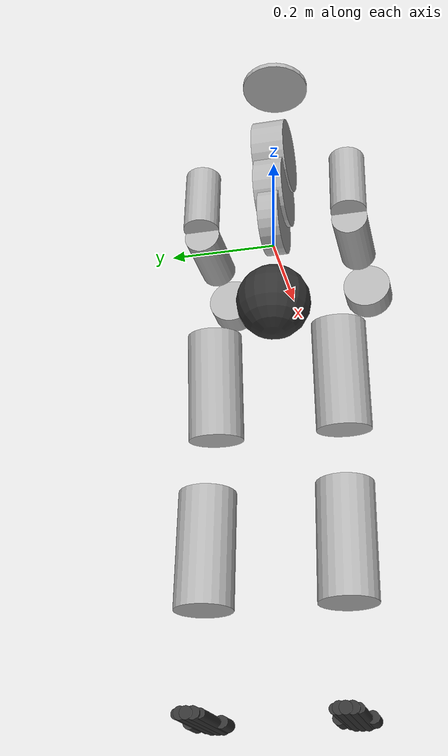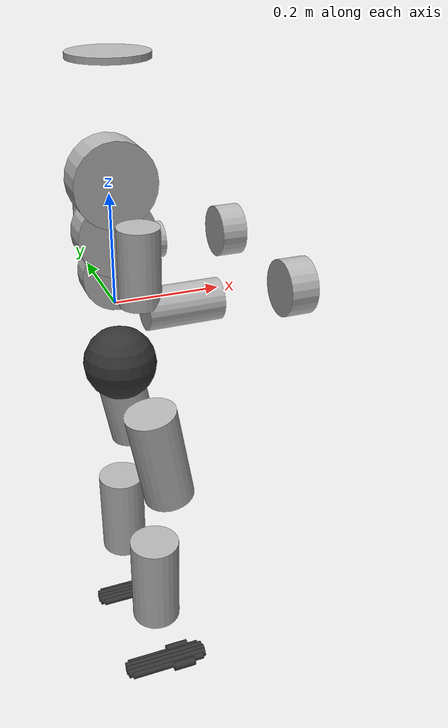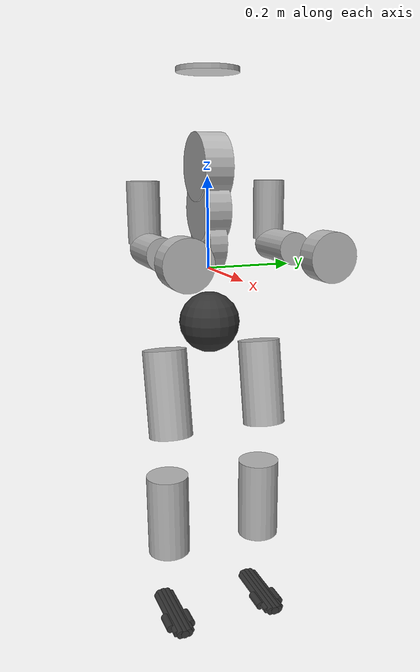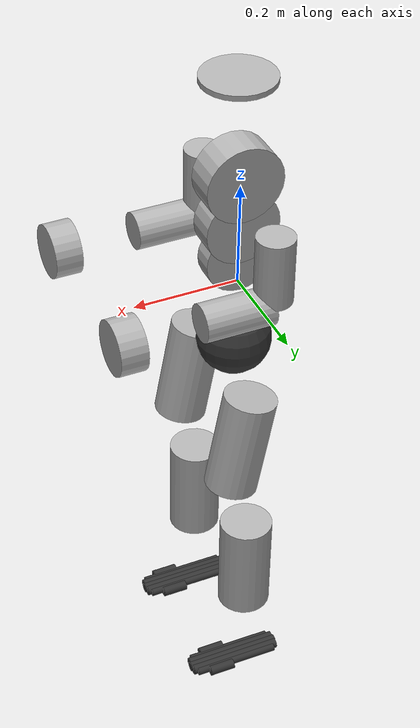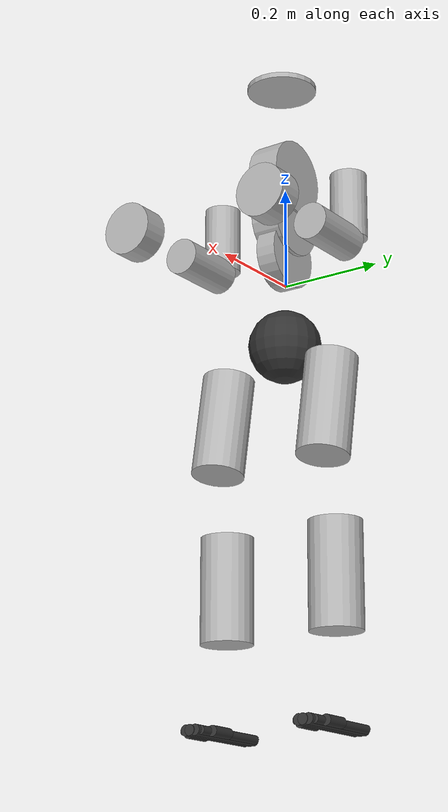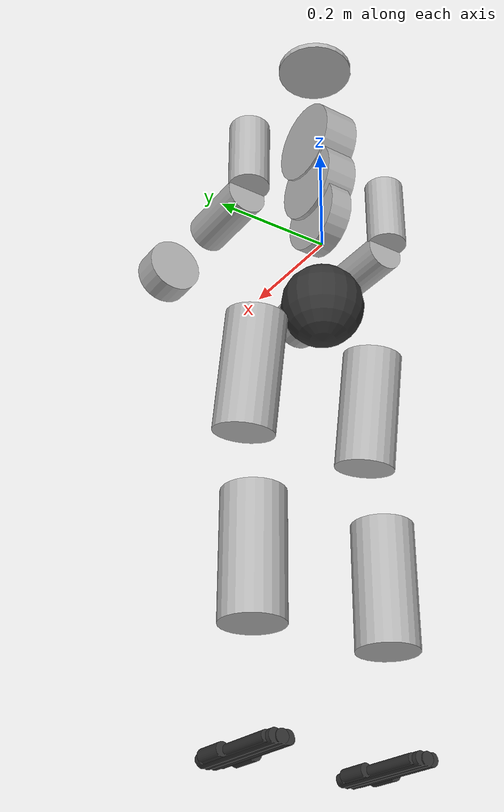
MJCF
<mujoco model="g1">
  <compiler angle="radian" autolimits="true"/>
  <statistic meansize="0.0815378" extent="1.42558" center="0.123399 0 -0.229608"/>
  <worldbody>
    <geom size="0.073 0.032" pos="0.005 0 0.22" quat="0.707105 0.707108 0 0" type="cylinder" rgba="0.7 0.7 0.7 1"/>
    <geom size="0.07 0.028" pos="0.005 0 0.13" quat="0.707105 0.707108 0 0" type="cylinder" rgba="0.7 0.7 0.7 1"/>
    <geom size="0.065 0.02" pos="0.005 0 0.06" quat="0.707105 0.707108 0 0" type="cylinder" rgba="0.7 0.7 0.7 1"/>
    <geom size="0.068 0.005" pos="0.01 0 0.415" quat="-3.67321e-06 1 0 0" type="cylinder" rgba="0.7 0.7 0.7 1"/>
    <body name="waist_roll_link">
      <inertial pos="0 2.3e-05 0" quat="0.5 0.5 -0.5 0.5" mass="0.086" diaginertia="8.245e-06 7.079e-06 6.339e-06"/>
      <joint name="waist_pitch_joint" pos="0 0 0" axis="0 1 0" range="-0.52 0.52"/>
      <body name="waist_yaw_link" pos="0.0039635 0 -0.044">
        <inertial pos="0.003494 0.000233 0.018034" quat="0.289697 0.591001 -0.337795 0.672821" mass="0.214" diaginertia="0.000163531 0.000107714 0.000102205"/>
        <joint name="waist_roll_joint" pos="0 0 0" axis="1 0 0" range="-0.52 0.52"/>
        <body name="pelvis">
          <inertial pos="0 0 -0.0760301" quat="1 0 -0.000398273 0" mass="3.814" diaginertia="0.0105549 0.00931478 0.0079185"/>
          <joint name="waist_yaw_joint" pos="0 0 0" axis="0 0 1" range="-2.618 2.618"/>
          <geom size="0.07" pos="0 0 -0.08" rgba="0.2 0.2 0.2 1"/>
          <body name="left_hip_pitch_link" pos="0 0.064452 -0.1027">
            <inertial pos="0.002741 0.047791 -0.02606" quat="0.954862 0.293964 0.0302556 0.030122" mass="1.35" diaginertia="0.00181517 0.00153422 0.00116212"/>
            <joint name="left_hip_pitch_joint" pos="0 0 0" axis="0 1 0" range="-2.5307 2.8798"/>
            <body name="left_hip_roll_link" pos="0 0.052 -0.030465" quat="0.996179 0 -0.0873386 0">
              <inertial pos="0.029812 -0.001045 -0.087934" quat="0.977808 -1.97119e-05 0.205576 -0.0403793" mass="1.52" diaginertia="0.00254986 0.00241169 0.00148755"/>
              <joint name="left_hip_roll_joint" pos="0 0 0" axis="1 0 0" range="-0.5236 2.9671"/>
              <geom size="0.05 0.1" pos="0.02 0 -0.1" type="cylinder" rgba="0.7 0.7 0.7 1"/>
              <body name="left_hip_yaw_link" pos="0.025001 0 -0.12412">
                <inertial pos="-0.057709 -0.010981 -0.15078" quat="0.600598 0.15832 0.223482 0.751181" mass="1.702" diaginertia="0.00776166 0.00717575 0.00160139"/>
                <joint name="left_hip_yaw_joint" pos="0 0 0" axis="0 0 1" range="-2.7576 2.7576"/>
                <body name="left_knee_link" pos="-0.078273 0.0021489 -0.17734" quat="0.996179 0 0.0873386 0">
                  <inertial pos="0.005457 0.003964 -0.12074" quat="0.923418 -0.0327699 0.0158246 0.382067" mass="1.932" diaginertia="0.0113804 0.0112778 0.00146458"/>
                  <joint name="left_knee_joint" pos="0 0 0" axis="0 1 0" range="-0.087267 2.8798"/>
                  <geom size="0.05 0.1" pos="0.02 0 -0.1" type="cylinder" rgba="0.7 0.7 0.7 1"/>
                  <body name="left_ankle_pitch_link" pos="0 -9.4445e-05 -0.30001">
                    <inertial pos="-0.007269 0 0.011137" quat="0.603053 0.369225 0.369225 0.603053" mass="0.074" diaginertia="1.89e-05 1.40805e-05 6.9195e-06"/>
                    <joint name="left_ankle_pitch_joint" pos="0 0 0" axis="0 1 0" range="-0.87267 0.5236"/>
                    <body name="left_ankle_roll_link" pos="0 0 -0.017558">
                      <inertial pos="0.026505 0 -0.016425" quat="-0.000481092 0.728482 -0.000618967 0.685065" mass="0.608" diaginertia="0.00167218 0.0016161 0.000217621"/>
                      <joint name="left_ankle_roll_joint" pos="0 0 0" axis="1 0 0" range="-0.2618 0.2618"/>
                      <geom size="0.01 0.025" pos="0.075 -0.026 -0.048" quat="0.707105 0 0.707108 0" type="cylinder" rgba="0.2 0.2 0.2 1"/>
                      <geom size="0.008 0.0835" pos="0.0395 -0.018 -0.048" quat="0.707105 0 -0.707108 0" type="cylinder" rgba="0.2 0.2 0.2 1"/>
                      <geom size="0.01 0.091" pos="0.039 -0.01 -0.048" quat="0.707105 0 -0.707108 0" type="cylinder" rgba="0.2 0.2 0.2 1"/>
                      <geom size="0.01 0.093" pos="0.039 0 -0.048" quat="0.707105 0 -0.707108 0" type="cylinder" rgba="0.2 0.2 0.2 1"/>
                      <geom size="0.01 0.091" pos="0.039 0.01 -0.048" quat="0.707105 0 -0.707108 0" type="cylinder" rgba="0.2 0.2 0.2 1"/>
                      <geom size="0.008 0.0835" pos="0.0395 0.018 -0.048" quat="0.707105 0 -0.707108 0" type="cylinder" rgba="0.2 0.2 0.2 1"/>
                      <geom size="0.01 0.025" pos="0.075 0.026 -0.048" quat="0.707105 0 0.707108 0" type="cylinder" rgba="0.2 0.2 0.2 1"/>
                    </body>
                  </body>
                </body>
              </body>
            </body>
          </body>
          <body name="right_hip_pitch_link" pos="0 -0.064452 -0.1027">
            <inertial pos="0.002741 -0.047791 -0.02606" quat="0.954862 -0.293964 0.0302556 -0.030122" mass="1.35" diaginertia="0.00181517 0.00153422 0.00116212"/>
            <joint name="right_hip_pitch_joint" pos="0 0 0" axis="0 1 0" range="-2.5307 2.8798"/>
            <body name="right_hip_roll_link" pos="0 -0.052 -0.030465" quat="0.996179 0 -0.0873386 0">
              <inertial pos="0.029812 0.001045 -0.087934" quat="0.977808 1.97119e-05 0.205576 0.0403793" mass="1.52" diaginertia="0.00254986 0.00241169 0.00148755"/>
              <joint name="right_hip_roll_joint" pos="0 0 0" axis="1 0 0" range="-2.9671 0.5236"/>
              <geom size="0.05 0.1" pos="0.02 0 -0.1" type="cylinder" rgba="0.7 0.7 0.7 1"/>
              <body name="right_hip_yaw_link" pos="0.025001 0 -0.12412">
                <inertial pos="-0.057709 0.010981 -0.15078" quat="0.751181 0.223482 0.15832 0.600598" mass="1.702" diaginertia="0.00776166 0.00717575 0.00160139"/>
                <joint name="right_hip_yaw_joint" pos="0 0 0" axis="0 0 1" range="-2.7576 2.7576"/>
                <body name="right_knee_link" pos="-0.078273 -0.0021489 -0.17734" quat="0.996179 0 0.0873386 0">
                  <inertial pos="0.005457 -0.003964 -0.12074" quat="0.923439 0.0345276 0.0116333 -0.382012" mass="1.932" diaginertia="0.011374 0.0112843 0.00146452"/>
                  <joint name="right_knee_joint" pos="0 0 0" axis="0 1 0" range="-0.087267 2.8798"/>
                  <geom size="0.05 0.1" pos="0.02 0 -0.1" type="cylinder" rgba="0.7 0.7 0.7 1"/>
                  <body name="right_ankle_pitch_link" pos="0 9.4445e-05 -0.30001">
                    <inertial pos="-0.007269 0 0.011137" quat="0.603053 0.369225 0.369225 0.603053" mass="0.074" diaginertia="1.89e-05 1.40805e-05 6.9195e-06"/>
                    <joint name="right_ankle_pitch_joint" pos="0 0 0" axis="0 1 0" range="-0.87267 0.5236"/>
                    <body name="right_ankle_roll_link" pos="0 0 -0.017558">
                      <inertial pos="0.026505 0 -0.016425" quat="0.000481092 0.728482 0.000618967 0.685065" mass="0.608" diaginertia="0.00167218 0.0016161 0.000217621"/>
                      <joint name="right_ankle_roll_joint" pos="0 0 0" axis="1 0 0" range="-0.2618 0.2618"/>
                      <geom size="0.01 0.025" pos="0.075 -0.026 -0.048" quat="0.707105 0 0.707108 0" type="cylinder" rgba="0.2 0.2 0.2 1"/>
                      <geom size="0.008 0.0835" pos="0.0395 -0.018 -0.048" quat="0.707105 0 -0.707108 0" type="cylinder" rgba="0.2 0.2 0.2 1"/>
                      <geom size="0.01 0.091" pos="0.039 -0.01 -0.048" quat="0.707105 0 -0.707108 0" type="cylinder" rgba="0.2 0.2 0.2 1"/>
                      <geom size="0.01 0.093" pos="0.039 0 -0.048" quat="0.707105 0 -0.707108 0" type="cylinder" rgba="0.2 0.2 0.2 1"/>
                      <geom size="0.01 0.091" pos="0.039 0.01 -0.048" quat="0.707105 0 -0.707108 0" type="cylinder" rgba="0.2 0.2 0.2 1"/>
                      <geom size="0.008 0.0835" pos="0.0395 0.018 -0.048" quat="0.707105 0 -0.707108 0" type="cylinder" rgba="0.2 0.2 0.2 1"/>
                      <geom size="0.01 0.025" pos="0.075 0.026 -0.048" quat="0.707105 0 0.707108 0" type="cylinder" rgba="0.2 0.2 0.2 1"/>
                    </body>
                  </body>
                </body>
              </body>
            </body>
          </body>
        </body>
      </body>
    </body>
    <body name="left_shoulder_pitch_link" pos="0.0039563 0.10022 0.24778" quat="0.990264 0.139201 1.38722e-05 -9.86868e-05">
      <inertial pos="0 0.035892 -0.011628" quat="0.654152 0.0130458 -0.326267 0.68225" mass="0.718" diaginertia="0.000465864 0.000432842 0.000406394"/>
      <joint name="left_shoulder_pitch_joint" pos="0 0 0" axis="0 1 0" range="-3.0892 2.6704"/>
      <body name="left_shoulder_roll_link" pos="0 0.038 -0.013831" quat="0.990268 -0.139172 0 0">
        <inertial pos="-0.000227 0.00727 -0.063243" quat="0.701256 -0.0196223 -0.00710317 0.712604" mass="0.643" diaginertia="0.000691311 0.000618011 0.000388977"/>
        <joint name="left_shoulder_roll_joint" pos="0 0 0" axis="1 0 0" range="-1.5882 2.2515"/>
        <body name="left_shoulder_yaw_link" pos="0 0.00624 -0.1032">
          <inertial pos="0.010773 -0.002949 -0.072009" quat="0.716879 -0.0964829 -0.0679942 0.687134" mass="0.734" diaginertia="0.00106187 0.00103217 0.000400661"/>
          <joint name="left_shoulder_yaw_joint" pos="0 0 0" axis="0 0 1" range="-2.618 2.618"/>
          <geom size="0.035 0.065" pos="0 0 -0.015" quat="-3.67321e-06 1 0 0" type="cylinder" rgba="0.7 0.7 0.7 1"/>
          <body name="left_elbow_link" pos="0.015783 0 -0.080518">
            <inertial pos="0.064956 0.004454 -0.010062" quat="0.541765 0.636132 0.388821 0.388129" mass="0.6" diaginertia="0.000443035 0.000421612 0.000259353"/>
            <joint name="left_elbow_joint" pos="0 0 0" axis="0 1 0" range="-1.0472 2.0944"/>
            <geom size="0.035 0.065" pos="0.055 0 -0.01" quat="0.707105 0 -0.707108 0" type="cylinder" rgba="0.7 0.7 0.7 1"/>
            <body name="left_wrist_roll_link" pos="0.1 0.00188791 -0.01">
              <inertial pos="0.0171394 0.000537591 4.8864e-07" quat="0.575338 0.411667 -0.574906 0.411094" mass="0.085445" diaginertia="5.48211e-05 4.96646e-05 3.57798e-05"/>
              <joint name="left_wrist_roll_joint" pos="0 0 0" axis="1 0 0" range="-1.97222 1.97222"/>
              <body name="left_wrist_pitch_link" pos="0.038 0 0">
                <inertial pos="0.0229999 -0.00111685 -0.00111658" quat="0.249998 0.661363 0.293036 0.643608" mass="0.48405" diaginertia="0.000430353 0.000429873 0.000164648"/>
                <joint name="left_wrist_pitch_joint" pos="0 0 0" axis="0 1 0" range="-1.61443 1.61443"/>
                <body name="left_wrist_yaw_link" pos="0.046 0 0">
                  <inertial pos="0.0708244 0.000191745 0.00161742" quat="0.510571 0.526295 0.468078 0.493188" mass="0.254576" diaginertia="0.000646113 0.000559993 0.000147566"/>
                  <joint name="left_wrist_yaw_joint" pos="0 0 0" axis="0 0 1" range="-1.61443 1.61443"/>
                  <geom size="0.05 0.025" pos="0.075 0 0" quat="0.707105 0 -0.707108 0" type="cylinder" rgba="0.7 0.7 0.7 1"/>
                </body>
              </body>
            </body>
          </body>
        </body>
      </body>
    </body>
    <body name="right_shoulder_pitch_link" pos="0.0039563 -0.10021 0.24778" quat="0.990264 -0.139201 1.38722e-05 9.86868e-05">
      <inertial pos="0 -0.035892 -0.011628" quat="0.68225 -0.326267 0.0130458 0.654152" mass="0.718" diaginertia="0.000465864 0.000432842 0.000406394"/>
      <joint name="right_shoulder_pitch_joint" pos="0 0 0" axis="0 1 0" range="-3.0892 2.6704"/>
      <body name="right_shoulder_roll_link" pos="0 -0.038 -0.013831" quat="0.990268 0.139172 0 0">
        <inertial pos="-0.000227 -0.00727 -0.063243" quat="0.712604 -0.00710317 -0.0196223 0.701256" mass="0.643" diaginertia="0.000691311 0.000618011 0.000388977"/>
        <joint name="right_shoulder_roll_joint" pos="0 0 0" axis="1 0 0" range="-2.2515 1.5882"/>
        <body name="right_shoulder_yaw_link" pos="0 -0.00624 -0.1032">
          <inertial pos="0.010773 0.002949 -0.072009" quat="0.687134 -0.0679942 -0.0964829 0.716879" mass="0.734" diaginertia="0.00106187 0.00103217 0.000400661"/>
          <joint name="right_shoulder_yaw_joint" pos="0 0 0" axis="0 0 1" range="-2.618 2.618"/>
          <geom size="0.035 0.065" pos="0 0 -0.015" quat="-3.67321e-06 1 0 0" type="cylinder" rgba="0.7 0.7 0.7 1"/>
          <body name="right_elbow_link" pos="0.015783 0 -0.080518">
            <inertial pos="0.064956 -0.004454 -0.010062" quat="0.388129 0.388821 0.636132 0.541765" mass="0.6" diaginertia="0.000443035 0.000421612 0.000259353"/>
            <joint name="right_elbow_joint" pos="0 0 0" axis="0 1 0" range="-1.0472 2.0944"/>
            <geom size="0.035 0.065" pos="0.055 0 -0.01" quat="0.707105 0 -0.707108 0" type="cylinder" rgba="0.7 0.7 0.7 1"/>
            <body name="right_wrist_roll_link" pos="0.1 -0.00188791 -0.01">
              <inertial pos="0.0171394 -0.000537591 4.8864e-07" quat="0.411667 0.575338 -0.411094 0.574906" mass="0.085445" diaginertia="5.48211e-05 4.96646e-05 3.57798e-05"/>
              <joint name="right_wrist_roll_joint" pos="0 0 0" axis="1 0 0" range="-1.97222 1.97222"/>
              <body name="right_wrist_pitch_link" pos="0.038 0 0">
                <inertial pos="0.0229999 0.00111685 -0.00111658" quat="0.643608 0.293036 0.661363 0.249998" mass="0.48405" diaginertia="0.000430353 0.000429873 0.000164648"/>
                <joint name="right_wrist_pitch_joint" pos="0 0 0" axis="0 1 0" range="-1.61443 1.61443"/>
                <body name="right_wrist_yaw_link" pos="0.046 0 0">
                  <inertial pos="0.0708244 -0.000191745 0.00161742" quat="0.493188 0.468078 0.526295 0.510571" mass="0.254576" diaginertia="0.000646113 0.000559993 0.000147566"/>
                  <joint name="right_wrist_yaw_joint" pos="0 0 0" axis="0 0 1" range="-1.61443 1.61443"/>
                  <geom size="0.05 0.025" pos="0.075 0 0" quat="0.707105 0 -0.707108 0" type="cylinder" rgba="0.7 0.7 0.7 1"/>
                </body>
              </body>
            </body>
          </body>
        </body>
      </body>
    </body>
  </worldbody>
</mujoco>
